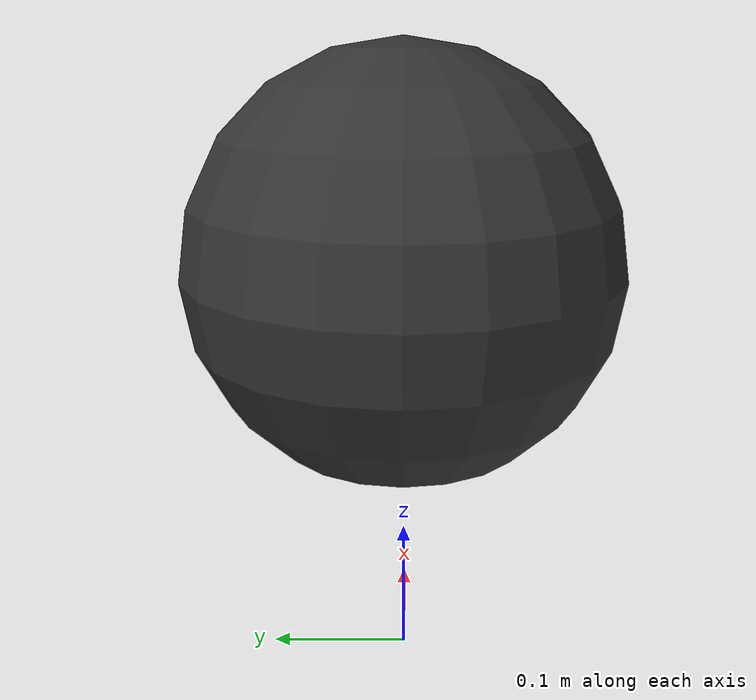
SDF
<?xml version="1.0" ?>
<sdf version="1.6">
  <model name="simple_quad">
    <pose>0 0 0.3 0 0 0</pose>
    <static>false</static>

    <link name="base_link">
      <inertial>
        <mass>1.0</mass>
        <inertia>
          <ixx>0.02</ixx>
          <iyy>0.02</iyy>
          <izz>0.04</izz>
        </inertia>
      </inertial>

      <collision name="collision">
        <geometry>
          <sphere><radius>0.15</radius></sphere>
        </geometry>
      </collision>

      <visual name="visual">
        <geometry>
          <sphere><radius>0.15</radius></sphere>
        </geometry>
        <material>
          <ambient>0.2 0.2 0.2 1</ambient>
        </material>
      </visual>
    </link>
   <plugin name="simple_controller" filename="libsimple_controller.so"/>
  </model>
</sdf>
